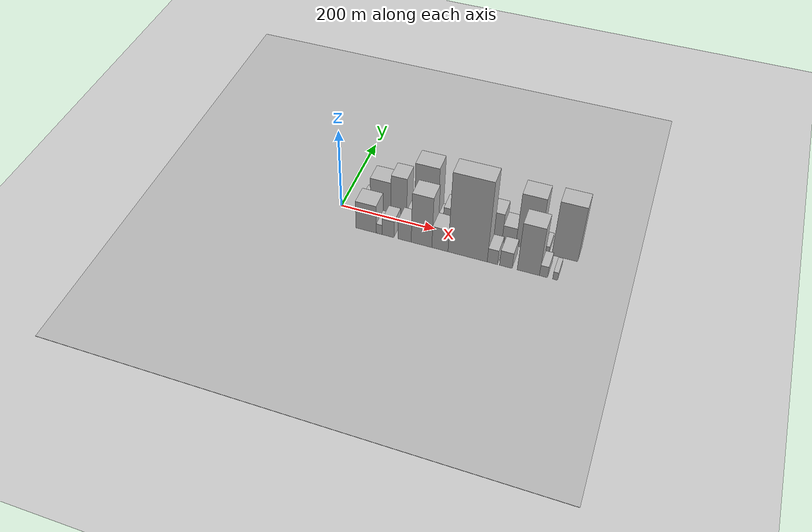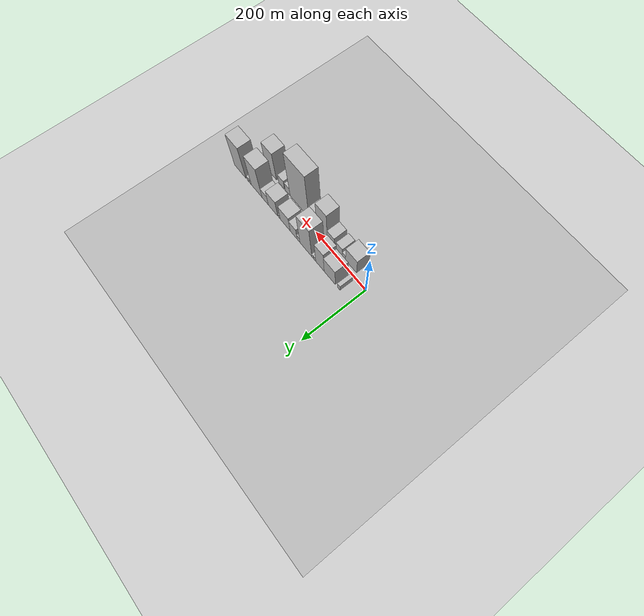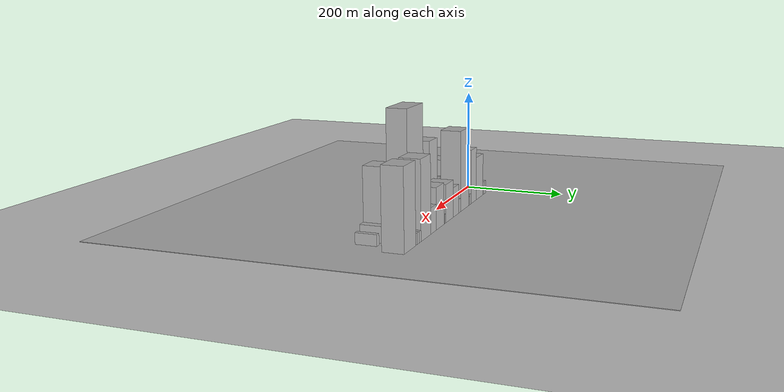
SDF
<?xml version="1.0" encoding="utf-8"?>

<sdf version="1.6">

   <world name="default">

      <gui fullscreen="0">

         <camera name="user_camera">

            <pose>-15 0 4.57585 0 0 0</pose>

            <view_controller>orbit</view_controller>

         </camera>

      </gui>

      <scene>

         <sky>

           <clouds>

             <speed>12</speed>

           </clouds>

         </sky>

         <ambient>0.4 0.4 0.4 1</ambient>

         <background>0.7 0.7 0.7 1</background>

         <shadows>1</shadows>

      </scene>

      <gravity>0 0 -9.8066</gravity>

      <magnetic_field>6e-06 2.3e-05 -4.2e-05</magnetic_field>

      <physics default="0" name="default_physics" type="ode">

         <ode>

            <solver>

               <type>quick</type>

               <iters>10</iters>

               <sor>1.0</sor>

               <use_dynamic_moi_rescaling>0</use_dynamic_moi_rescaling>

            </solver>

            <constraints>

               <cfm>0</cfm>

               <erp>0.2</erp>

               <contact_max_correcting_vel>100</contact_max_correcting_vel>

               <contact_surface_layer>0.001</contact_surface_layer>

            </constraints>

         </ode>

         <max_step_size>0.004</max_step_size>

         <real_time_factor>1</real_time_factor>

         <real_time_update_rate>250</real_time_update_rate>

      </physics>

      <light name="sun" type="directional">

         <cast_shadows>1</cast_shadows>

         <pose>0 0 10 0 0 0</pose>

         <diffuse>0.8 0.8 0.8 1</diffuse>

         <specular>0.2 0.2 0.2 1</specular>

         <attenuation>

            <range>1000</range>

            <constant>0.9</constant>

            <linear>0.01</linear>

            <quadratic>0.001</quadratic>

         </attenuation>

         <direction>-0.5 0.1 -0.9</direction>

      </light>

      <include>

         <name>ground_plane_1</name>

         <uri>model://HANNAS_ground_plane</uri>

         <pose>0 0 0  0 0 0</pose>

      </include>

      <include>

         <name>ground_plane_2</name>

         <uri>model://HANNAS_ground_plane</uri>

         <pose>100 0 0  0 0 0</pose>

      </include>

      <model name="building_1">

         <static>1</static>

         <pose frame="">45.5367 30.0000 0 0.000000 0.000000 1.570796</pose>

         <link name="link">

            <pose frame="">0 0 13.50 0 0 0</pose>

            <collision name="collision">

               <geometry>

                  <box>

                     <size>40.0000 11.0735 27.0000</size>

                  </box>

               </geometry>

               <max_contacts>10</max_contacts>

               <surface>

                  <contact>

                     <ode/>

                  </contact>

                  <bounce/>

                  <friction>

                     <torsional>

                        <ode/>

                     </torsional>

                     <ode/>

                  </friction>

               </surface>

            </collision>

            <visual name="visual">

               <cast_shadows>0</cast_shadows>

               <geometry>

                  <box>

                     <size>40.0000 11.0735 27.0000</size>

                  </box>

               </geometry>

               <material>

                  <script>

                     <uri>model://HANNAS_wall/materials/scripts</uri>

                     <uri>model://HANNAS_wall/materials/textures</uri>

                     <name>vrc/HANNAS_wall</name>

                  </script>

               </material>

            </visual>

            <self_collide>0</self_collide>

            <enable_wind>0</enable_wind>

            <kinematic>0</kinematic>

         </link>

      </model>

      <model name="building_2">

         <static>1</static>

         <pose frame="">81.1592 30.0000 0 0.000000 0.000000 1.570796</pose>

         <link name="link">

            <pose frame="">0 0 43.50 0 0 0</pose>

            <collision name="collision">

               <geometry>

                  <box>

                     <size>40.0000 44.1714 87.0000</size>

                  </box>

               </geometry>

               <max_contacts>10</max_contacts>

               <surface>

                  <contact>

                     <ode/>

                  </contact>

                  <bounce/>

                  <friction>

                     <torsional>

                        <ode/>

                     </torsional>

                     <ode/>

                  </friction>

               </surface>

            </collision>

            <visual name="visual">

               <cast_shadows>0</cast_shadows>

               <geometry>

                  <box>

                     <size>40.0000 44.1714 87.0000</size>

                  </box>

               </geometry>

               <material>

                  <script>

                     <uri>model://HANNAS_wall/materials/scripts</uri>

                     <uri>model://HANNAS_wall/materials/textures</uri>

                     <name>vrc/HANNAS_wall</name>

                  </script>

               </material>

            </visual>

            <self_collide>0</self_collide>

            <enable_wind>0</enable_wind>

            <kinematic>0</kinematic>

         </link>

      </model>

      <model name="building_3">

         <static>1</static>

         <pose frame="">120.0275 30.0000 0 0.000000 0.000000 1.570796</pose>

         <link name="link">

            <pose frame="">0 0 54.00 0 0 0</pose>

            <collision name="collision">

               <geometry>

                  <box>

                     <size>40.0000 33.5653 108.0000</size>

                  </box>

               </geometry>

               <max_contacts>10</max_contacts>

               <surface>

                  <contact>

                     <ode/>

                  </contact>

                  <bounce/>

                  <friction>

                     <torsional>

                        <ode/>

                     </torsional>

                     <ode/>

                  </friction>

               </surface>

            </collision>

            <visual name="visual">

               <cast_shadows>0</cast_shadows>

               <geometry>

                  <box>

                     <size>40.0000 33.5653 108.0000</size>

                  </box>

               </geometry>

               <material>

                  <script>

                     <uri>model://HANNAS_wall/materials/scripts</uri>

                     <uri>model://HANNAS_wall/materials/textures</uri>

                     <name>vrc/HANNAS_wall</name>

                  </script>

               </material>

            </visual>

            <self_collide>0</self_collide>

            <enable_wind>0</enable_wind>

            <kinematic>0</kinematic>

         </link>

      </model>

      <model name="building_4">

         <static>1</static>

         <pose frame="">141.1491 30.0000 0 0.000000 0.000000 1.570796</pose>

         <link name="link">

            <pose frame="">0 0 10.50 0 0 0</pose>

            <collision name="collision">

               <geometry>

                  <box>

                     <size>40.0000 8.6779 21.0000</size>

                  </box>

               </geometry>

               <max_contacts>10</max_contacts>

               <surface>

                  <contact>

                     <ode/>

                  </contact>

                  <bounce/>

                  <friction>

                     <torsional>

                        <ode/>

                     </torsional>

                     <ode/>

                  </friction>

               </surface>

            </collision>

            <visual name="visual">

               <cast_shadows>0</cast_shadows>

               <geometry>

                  <box>

                     <size>40.0000 8.6779 21.0000</size>

                  </box>

               </geometry>

               <material>

                  <script>

                     <uri>model://HANNAS_wall/materials/scripts</uri>

                     <uri>model://HANNAS_wall/materials/textures</uri>

                     <name>vrc/HANNAS_wall</name>

                  </script>

               </material>

            </visual>

            <self_collide>0</self_collide>

            <enable_wind>0</enable_wind>

            <kinematic>0</kinematic>

         </link>

      </model>

      <model name="building_5">

         <static>1</static>

         <pose frame="">149.2468 30.0000 0 0.000000 0.000000 1.570796</pose>

         <link name="link">

            <pose frame="">0 0 9.00 0 0 0</pose>

            <collision name="collision">

               <geometry>

                  <box>

                     <size>40.0000 7.5175 18.0000</size>

                  </box>

               </geometry>

               <max_contacts>10</max_contacts>

               <surface>

                  <contact>

                     <ode/>

                  </contact>

                  <bounce/>

                  <friction>

                     <torsional>

                        <ode/>

                     </torsional>

                     <ode/>

                  </friction>

               </surface>

            </collision>

            <visual name="visual">

               <cast_shadows>0</cast_shadows>

               <geometry>

                  <box>

                     <size>40.0000 7.5175 18.0000</size>

                  </box>

               </geometry>

               <material>

                  <script>

                     <uri>model://HANNAS_wall/materials/scripts</uri>

                     <uri>model://HANNAS_wall/materials/textures</uri>

                     <name>vrc/HANNAS_wall</name>

                  </script>

               </material>

            </visual>

            <self_collide>0</self_collide>

            <enable_wind>0</enable_wind>

            <kinematic>0</kinematic>

         </link>

      </model>

      <model name="building_6">

         <static>1</static>

         <pose frame="">177.5252 30.0000 0 0.000000 0.000000 1.570796</pose>

         <link name="link">

            <pose frame="">0 0 78.00 0 0 0</pose>

            <collision name="collision">

               <geometry>

                  <box>

                     <size>40.0000 49.0393 156.0000</size>

                  </box>

               </geometry>

               <max_contacts>10</max_contacts>

               <surface>

                  <contact>

                     <ode/>

                  </contact>

                  <bounce/>

                  <friction>

                     <torsional>

                        <ode/>

                     </torsional>

                     <ode/>

                  </friction>

               </surface>

            </collision>

            <visual name="visual">

               <cast_shadows>0</cast_shadows>

               <geometry>

                  <box>

                     <size>40.0000 49.0393 156.0000</size>

                  </box>

               </geometry>

               <material>

                  <script>

                     <uri>model://HANNAS_wall/materials/scripts</uri>

                     <uri>model://HANNAS_wall/materials/textures</uri>

                     <name>vrc/HANNAS_wall</name>

                  </script>

               </material>

            </visual>

            <self_collide>0</self_collide>

            <enable_wind>0</enable_wind>

            <kinematic>0</kinematic>

         </link>

      </model>

      <model name="building_7">

         <static>1</static>

         <pose frame="">207.9645 30.0000 0 0.000000 0.000000 1.570796</pose>

         <link name="link">

            <pose frame="">0 0 13.50 0 0 0</pose>

            <collision name="collision">

               <geometry>

                  <box>

                     <size>40.0000 11.8393 27.0000</size>

                  </box>

               </geometry>

               <max_contacts>10</max_contacts>

               <surface>

                  <contact>

                     <ode/>

                  </contact>

                  <bounce/>

                  <friction>

                     <torsional>

                        <ode/>

                     </torsional>

                     <ode/>

                  </friction>

               </surface>

            </collision>

            <visual name="visual">

               <cast_shadows>0</cast_shadows>

               <geometry>

                  <box>

                     <size>40.0000 11.8393 27.0000</size>

                  </box>

               </geometry>

               <material>

                  <script>

                     <uri>model://HANNAS_wall/materials/scripts</uri>

                     <uri>model://HANNAS_wall/materials/textures</uri>

                     <name>vrc/HANNAS_wall</name>

                  </script>

               </material>

            </visual>

            <self_collide>0</self_collide>

            <enable_wind>0</enable_wind>

            <kinematic>0</kinematic>

         </link>

      </model>

      <model name="building_8">

         <static>1</static>

         <pose frame="">228.5331 30.0000 0 0.000000 0.000000 1.570796</pose>

         <link name="link">

            <pose frame="">0 0 28.50 0 0 0</pose>

            <collision name="collision">

               <geometry>

                  <box>

                     <size>40.0000 29.2979 57.0000</size>

                  </box>

               </geometry>

               <max_contacts>10</max_contacts>

               <surface>

                  <contact>

                     <ode/>

                  </contact>

                  <bounce/>

                  <friction>

                     <torsional>

                        <ode/>

                     </torsional>

                     <ode/>

                  </friction>

               </surface>

            </collision>

            <visual name="visual">

               <cast_shadows>0</cast_shadows>

               <geometry>

                  <box>

                     <size>40.0000 29.2979 57.0000</size>

                  </box>

               </geometry>

               <material>

                  <script>

                     <uri>model://HANNAS_wall/materials/scripts</uri>

                     <uri>model://HANNAS_wall/materials/textures</uri>

                     <name>vrc/HANNAS_wall</name>

                  </script>

               </material>

            </visual>

            <self_collide>0</self_collide>

            <enable_wind>0</enable_wind>

            <kinematic>0</kinematic>

         </link>

      </model>

      <model name="building_9">

         <static>1</static>

         <pose frame="">264.3272 30.0000 0 0.000000 0.000000 1.570796</pose>

         <link name="link">

            <pose frame="">0 0 36.00 0 0 0</pose>

            <collision name="collision">

               <geometry>

                  <box>

                     <size>40.0000 42.2904 72.0000</size>

                  </box>

               </geometry>

               <max_contacts>10</max_contacts>

               <surface>

                  <contact>

                     <ode/>

                  </contact>

                  <bounce/>

                  <friction>

                     <torsional>

                        <ode/>

                     </torsional>

                     <ode/>

                  </friction>

               </surface>

            </collision>

            <visual name="visual">

               <cast_shadows>0</cast_shadows>

               <geometry>

                  <box>

                     <size>40.0000 42.2904 72.0000</size>

                  </box>

               </geometry>

               <material>

                  <script>

                     <uri>model://HANNAS_wall/materials/scripts</uri>

                     <uri>model://HANNAS_wall/materials/textures</uri>

                     <name>vrc/HANNAS_wall</name>

                  </script>

               </material>

            </visual>

            <self_collide>0</self_collide>

            <enable_wind>0</enable_wind>

            <kinematic>0</kinematic>

         </link>

      </model>

      <model name="building_10">

         <static>1</static>

         <pose frame="">289.1165 30.0000 0 0.000000 0.000000 1.570796</pose>

         <link name="link">

            <pose frame="">0 0 9.00 0 0 0</pose>

            <collision name="collision">

               <geometry>

                  <box>

                     <size>40.0000 7.2881 18.0000</size>

                  </box>

               </geometry>

               <max_contacts>10</max_contacts>

               <surface>

                  <contact>

                     <ode/>

                  </contact>

                  <bounce/>

                  <friction>

                     <torsional>

                        <ode/>

                     </torsional>

                     <ode/>

                  </friction>

               </surface>

            </collision>

            <visual name="visual">

               <cast_shadows>0</cast_shadows>

               <geometry>

                  <box>

                     <size>40.0000 7.2881 18.0000</size>

                  </box>

               </geometry>

               <material>

                  <script>

                     <uri>model://HANNAS_wall/materials/scripts</uri>

                     <uri>model://HANNAS_wall/materials/textures</uri>

                     <name>vrc/HANNAS_wall</name>

                  </script>

               </material>

            </visual>

            <self_collide>0</self_collide>

            <enable_wind>0</enable_wind>

            <kinematic>0</kinematic>

         </link>

      </model>

      <model name="building_11">

         <static>1</static>

         <pose frame="">316.0593 30.0000 0 0.000000 0.000000 1.570796</pose>

         <link name="link">

            <pose frame="">0 0 39.00 0 0 0</pose>

            <collision name="collision">

               <geometry>

                  <box>

                     <size>40.0000 40.5976 78.0000</size>

                  </box>

               </geometry>

               <max_contacts>10</max_contacts>

               <surface>

                  <contact>

                     <ode/>

                  </contact>

                  <bounce/>

                  <friction>

                     <torsional>

                        <ode/>

                     </torsional>

                     <ode/>

                  </friction>

               </surface>

            </collision>

            <visual name="visual">

               <cast_shadows>0</cast_shadows>

               <geometry>

                  <box>

                     <size>40.0000 40.5976 78.0000</size>

                  </box>

               </geometry>

               <material>

                  <script>

                     <uri>model://HANNAS_wall/materials/scripts</uri>

                     <uri>model://HANNAS_wall/materials/textures</uri>

                     <name>vrc/HANNAS_wall</name>

                  </script>

               </material>

            </visual>

            <self_collide>0</self_collide>

            <enable_wind>0</enable_wind>

            <kinematic>0</kinematic>

         </link>

      </model>

      <model name="building_12">

         <static>1</static>

         <pose frame="">350.3857 30.0000 0 0.000000 0.000000 1.570796</pose>

         <link name="link">

            <pose frame="">0 0 24.00 0 0 0</pose>

            <collision name="collision">

               <geometry>

                  <box>

                     <size>40.0000 28.0552 48.0000</size>

                  </box>

               </geometry>

               <max_contacts>10</max_contacts>

               <surface>

                  <contact>

                     <ode/>

                  </contact>

                  <bounce/>

                  <friction>

                     <torsional>

                        <ode/>

                     </torsional>

                     <ode/>

                  </friction>

               </surface>

            </collision>

            <visual name="visual">

               <cast_shadows>0</cast_shadows>

               <geometry>

                  <box>

                     <size>40.0000 28.0552 48.0000</size>

                  </box>

               </geometry>

               <material>

                  <script>

                     <uri>model://HANNAS_wall/materials/scripts</uri>

                     <uri>model://HANNAS_wall/materials/textures</uri>

                     <name>vrc/HANNAS_wall</name>

                  </script>

               </material>

            </visual>

            <self_collide>0</self_collide>

            <enable_wind>0</enable_wind>

            <kinematic>0</kinematic>

         </link>

      </model>

      <model name="building_13">

         <static>1</static>

         <pose frame="">388.3009 30.0000 0 0.000000 0.000000 1.570796</pose>

         <link name="link">

            <pose frame="">0 0 72.00 0 0 0</pose>

            <collision name="collision">

               <geometry>

                  <box>

                     <size>40.0000 47.7751 144.0000</size>

                  </box>

               </geometry>

               <max_contacts>10</max_contacts>

               <surface>

                  <contact>

                     <ode/>

                  </contact>

                  <bounce/>

                  <friction>

                     <torsional>

                        <ode/>

                     </torsional>

                     <ode/>

                  </friction>

               </surface>

            </collision>

            <visual name="visual">

               <cast_shadows>0</cast_shadows>

               <geometry>

                  <box>

                     <size>40.0000 47.7751 144.0000</size>

                  </box>

               </geometry>

               <material>

                  <script>

                     <uri>model://HANNAS_wall/materials/scripts</uri>

                     <uri>model://HANNAS_wall/materials/textures</uri>

                     <name>vrc/HANNAS_wall</name>

                  </script>

               </material>

            </visual>

            <self_collide>0</self_collide>

            <enable_wind>0</enable_wind>

            <kinematic>0</kinematic>

         </link>

      </model>

      <model name="building_14">

         <static>1</static>

         <pose frame="">416.6782 30.0000 0 0.000000 0.000000 1.570796</pose>

         <link name="link">

            <pose frame="">0 0 10.50 0 0 0</pose>

            <collision name="collision">

               <geometry>

                  <box>

                     <size>40.0000 8.9795 21.0000</size>

                  </box>

               </geometry>

               <max_contacts>10</max_contacts>

               <surface>

                  <contact>

                     <ode/>

                  </contact>

                  <bounce/>

                  <friction>

                     <torsional>

                        <ode/>

                     </torsional>

                     <ode/>

                  </friction>

               </surface>

            </collision>

            <visual name="visual">

               <cast_shadows>0</cast_shadows>

               <geometry>

                  <box>

                     <size>40.0000 8.9795 21.0000</size>

                  </box>

               </geometry>

               <material>

                  <script>

                     <uri>model://HANNAS_wall/materials/scripts</uri>

                     <uri>model://HANNAS_wall/materials/textures</uri>

                     <name>vrc/HANNAS_wall</name>

                  </script>

               </material>

            </visual>

            <self_collide>0</self_collide>

            <enable_wind>0</enable_wind>

            <kinematic>0</kinematic>

         </link>

      </model>

      <model name="building_15">

         <static>1</static>

         <pose frame="">426.0127 30.0000 0 0.000000 0.000000 1.570796</pose>

         <link name="link">

            <pose frame="">0 0 10.50 0 0 0</pose>

            <collision name="collision">

               <geometry>

                  <box>

                     <size>40.0000 9.6896 21.0000</size>

                  </box>

               </geometry>

               <max_contacts>10</max_contacts>

               <surface>

                  <contact>

                     <ode/>

                  </contact>

                  <bounce/>

                  <friction>

                     <torsional>

                        <ode/>

                     </torsional>

                     <ode/>

                  </friction>

               </surface>

            </collision>

            <visual name="visual">

               <cast_shadows>0</cast_shadows>

               <geometry>

                  <box>

                     <size>40.0000 9.6896 21.0000</size>

                  </box>

               </geometry>

               <material>

                  <script>

                     <uri>model://HANNAS_wall/materials/scripts</uri>

                     <uri>model://HANNAS_wall/materials/textures</uri>

                     <name>vrc/HANNAS_wall</name>

                  </script>

               </material>

            </visual>

            <self_collide>0</self_collide>

            <enable_wind>0</enable_wind>

            <kinematic>0</kinematic>

         </link>

      </model>

      <model name="building_16">

         <static>1</static>

         <pose frame="">462.6451 30.0000 0 0.000000 0.000000 1.570796</pose>

         <link name="link">

            <pose frame="">0 0 73.50 0 0 0</pose>

            <collision name="collision">

               <geometry>

                  <box>

                     <size>40.0000 51.5750 147.0000</size>

                  </box>

               </geometry>

               <max_contacts>10</max_contacts>

               <surface>

                  <contact>

                     <ode/>

                  </contact>

                  <bounce/>

                  <friction>

                     <torsional>

                        <ode/>

                     </torsional>

                     <ode/>

                  </friction>

               </surface>

            </collision>

            <visual name="visual">

               <cast_shadows>0</cast_shadows>

               <geometry>

                  <box>

                     <size>40.0000 51.5750 147.0000</size>

                  </box>

               </geometry>

               <material>

                  <script>

                     <uri>model://HANNAS_wall/materials/scripts</uri>

                     <uri>model://HANNAS_wall/materials/textures</uri>

                     <name>vrc/HANNAS_wall</name>

                  </script>

               </material>

            </visual>

            <self_collide>0</self_collide>

            <enable_wind>0</enable_wind>

            <kinematic>0</kinematic>

         </link>

      </model>

      <model name="building_17">

         <static>1</static>

         <pose frame="">71.7341 -30.0000 0 0.000000 0.000000 1.570796</pose>

         <link name="link">

            <pose frame="">0 0 37.50 0 0 0</pose>

            <collision name="collision">

               <geometry>

                  <box>

                     <size>40.0000 43.4682 75.0000</size>

                  </box>

               </geometry>

               <max_contacts>10</max_contacts>

               <surface>

                  <contact>

                     <ode/>

                  </contact>

                  <bounce/>

                  <friction>

                     <torsional>

                        <ode/>

                     </torsional>

                     <ode/>

                  </friction>

               </surface>

            </collision>

            <visual name="visual">

               <cast_shadows>0</cast_shadows>

               <geometry>

                  <box>

                     <size>40.0000 43.4682 75.0000</size>

                  </box>

               </geometry>

               <material>

                  <script>

                     <uri>model://HANNAS_wall/materials/scripts</uri>

                     <uri>model://HANNAS_wall/materials/textures</uri>

                     <name>vrc/HANNAS_wall</name>

                  </script>

               </material>

            </visual>

            <self_collide>0</self_collide>

            <enable_wind>0</enable_wind>

            <kinematic>0</kinematic>

         </link>

      </model>

      <model name="building_18">

         <static>1</static>

         <pose frame="">99.8404 -30.0000 0 0.000000 0.000000 1.570796</pose>

         <link name="link">

            <pose frame="">0 0 13.50 0 0 0</pose>

            <collision name="collision">

               <geometry>

                  <box>

                     <size>40.0000 12.7443 27.0000</size>

                  </box>

               </geometry>

               <max_contacts>10</max_contacts>

               <surface>

                  <contact>

                     <ode/>

                  </contact>

                  <bounce/>

                  <friction>

                     <torsional>

                        <ode/>

                     </torsional>

                     <ode/>

                  </friction>

               </surface>

            </collision>

            <visual name="visual">

               <cast_shadows>0</cast_shadows>

               <geometry>

                  <box>

                     <size>40.0000 12.7443 27.0000</size>

                  </box>

               </geometry>

               <material>

                  <script>

                     <uri>model://HANNAS_wall/materials/scripts</uri>

                     <uri>model://HANNAS_wall/materials/textures</uri>

                     <name>vrc/HANNAS_wall</name>

                  </script>

               </material>

            </visual>

            <self_collide>0</self_collide>

            <enable_wind>0</enable_wind>

            <kinematic>0</kinematic>

         </link>

      </model>

      <model name="building_19">

         <static>1</static>

         <pose frame="">118.4629 -30.0000 0 0.000000 0.000000 1.570796</pose>

         <link name="link">

            <pose frame="">0 0 22.50 0 0 0</pose>

            <collision name="collision">

               <geometry>

                  <box>

                     <size>40.0000 24.5007 45.0000</size>

                  </box>

               </geometry>

               <max_contacts>10</max_contacts>

               <surface>

                  <contact>

                     <ode/>

                  </contact>

                  <bounce/>

                  <friction>

                     <torsional>

                        <ode/>

                     </torsional>

                     <ode/>

                  </friction>

               </surface>

            </collision>

            <visual name="visual">

               <cast_shadows>0</cast_shadows>

               <geometry>

                  <box>

                     <size>40.0000 24.5007 45.0000</size>

                  </box>

               </geometry>

               <material>

                  <script>

                     <uri>model://HANNAS_wall/materials/scripts</uri>

                     <uri>model://HANNAS_wall/materials/textures</uri>

                     <name>vrc/HANNAS_wall</name>

                  </script>

               </material>

            </visual>

            <self_collide>0</self_collide>

            <enable_wind>0</enable_wind>

            <kinematic>0</kinematic>

         </link>

      </model>

      <model name="building_20">

         <static>1</static>

         <pose frame="">152.8165 -30.0000 0 0.000000 0.000000 1.570796</pose>

         <link name="link">

            <pose frame="">0 0 25.50 0 0 0</pose>

            <collision name="collision">

               <geometry>

                  <box>

                     <size>40.0000 28.2065 51.0000</size>

                  </box>

               </geometry>

               <max_contacts>10</max_contacts>

               <surface>

                  <contact>

                     <ode/>

                  </contact>

                  <bounce/>

                  <friction>

                     <torsional>

                        <ode/>

                     </torsional>

                     <ode/>

                  </friction>

               </surface>

            </collision>

            <visual name="visual">

               <cast_shadows>0</cast_shadows>

               <geometry>

                  <box>

                     <size>40.0000 28.2065 51.0000</size>

                  </box>

               </geometry>

               <material>

                  <script>

                     <uri>model://HANNAS_wall/materials/scripts</uri>

                     <uri>model://HANNAS_wall/materials/textures</uri>

                     <name>vrc/HANNAS_wall</name>

                  </script>

               </material>

            </visual>

            <self_collide>0</self_collide>

            <enable_wind>0</enable_wind>

            <kinematic>0</kinematic>

         </link>

      </model>

      <model name="building_21">

         <static>1</static>

         <pose frame="">188.3258 -30.0000 0 0.000000 0.000000 1.570796</pose>

         <link name="link">

            <pose frame="">0 0 67.50 0 0 0</pose>

            <collision name="collision">

               <geometry>

                  <box>

                     <size>40.0000 42.8120 135.0000</size>

                  </box>

               </geometry>

               <max_contacts>10</max_contacts>

               <surface>

                  <contact>

                     <ode/>

                  </contact>

                  <bounce/>

                  <friction>

                     <torsional>

                        <ode/>

                     </torsional>

                     <ode/>

                  </friction>

               </surface>

            </collision>

            <visual name="visual">

               <cast_shadows>0</cast_shadows>

               <geometry>

                  <box>

                     <size>40.0000 42.8120 135.0000</size>

                  </box>

               </geometry>

               <material>

                  <script>

                     <uri>model://HANNAS_wall/materials/scripts</uri>

                     <uri>model://HANNAS_wall/materials/textures</uri>

                     <name>vrc/HANNAS_wall</name>

                  </script>

               </material>

            </visual>

            <self_collide>0</self_collide>

            <enable_wind>0</enable_wind>

            <kinematic>0</kinematic>

         </link>

      </model>

      <model name="building_22">

         <static>1</static>

         <pose frame="">226.4628 -30.0000 0 0.000000 0.000000 1.570796</pose>

         <link name="link">

            <pose frame="">0 0 30.00 0 0 0</pose>

            <collision name="collision">

               <geometry>

                  <box>

                     <size>40.0000 33.4621 60.0000</size>

                  </box>

               </geometry>

               <max_contacts>10</max_contacts>

               <surface>

                  <contact>

                     <ode/>

                  </contact>

                  <bounce/>

                  <friction>

                     <torsional>

                        <ode/>

                     </torsional>

                     <ode/>

                  </friction>

               </surface>

            </collision>

            <visual name="visual">

               <cast_shadows>0</cast_shadows>

               <geometry>

                  <box>

                     <size>40.0000 33.4621 60.0000</size>

                  </box>

               </geometry>

               <material>

                  <script>

                     <uri>model://HANNAS_wall/materials/scripts</uri>

                     <uri>model://HANNAS_wall/materials/textures</uri>

                     <name>vrc/HANNAS_wall</name>

                  </script>

               </material>

            </visual>

            <self_collide>0</self_collide>

            <enable_wind>0</enable_wind>

            <kinematic>0</kinematic>

         </link>

      </model>

      <model name="building_23">

         <static>1</static>

         <pose frame="">283.0121 -30.0000 0 0.000000 0.000000 1.570796</pose>

         <link name="link">

            <pose frame="">0 0 106.50 0 0 0</pose>

            <collision name="collision">

               <geometry>

                  <box>

                     <size>40.0000 79.6364 213.0000</size>

                  </box>

               </geometry>

               <max_contacts>10</max_contacts>

               <surface>

                  <contact>

                     <ode/>

                  </contact>

                  <bounce/>

                  <friction>

                     <torsional>

                        <ode/>

                     </torsional>

                     <ode/>

                  </friction>

               </surface>

            </collision>

            <visual name="visual">

               <cast_shadows>0</cast_shadows>

               <geometry>

                  <box>

                     <size>40.0000 79.6364 213.0000</size>

                  </box>

               </geometry>

               <material>

                  <script>

                     <uri>model://HANNAS_wall/materials/scripts</uri>

                     <uri>model://HANNAS_wall/materials/textures</uri>

                     <name>vrc/HANNAS_wall</name>

                  </script>

               </material>

            </visual>

            <self_collide>0</self_collide>

            <enable_wind>0</enable_wind>

            <kinematic>0</kinematic>

         </link>

      </model>

      <model name="building_24">

         <static>1</static>

         <pose frame="">333.2425 -30.0000 0 0.000000 0.000000 1.570796</pose>

         <link name="link">

            <pose frame="">0 0 19.50 0 0 0</pose>

            <collision name="collision">

               <geometry>

                  <box>

                     <size>40.0000 20.8243 39.0000</size>

                  </box>

               </geometry>

               <max_contacts>10</max_contacts>

               <surface>

                  <contact>

                     <ode/>

                  </contact>

                  <bounce/>

                  <friction>

                     <torsional>

                        <ode/>

                     </torsional>

                     <ode/>

                  </friction>

               </surface>

            </collision>

            <visual name="visual">

               <cast_shadows>0</cast_shadows>

               <geometry>

                  <box>

                     <size>40.0000 20.8243 39.0000</size>

                  </box>

               </geometry>

               <material>

                  <script>

                     <uri>model://HANNAS_wall/materials/scripts</uri>

                     <uri>model://HANNAS_wall/materials/textures</uri>

                     <name>vrc/HANNAS_wall</name>

                  </script>

               </material>

            </visual>

            <self_collide>0</self_collide>

            <enable_wind>0</enable_wind>

            <kinematic>0</kinematic>

         </link>

      </model>

      <model name="building_25">

         <static>1</static>

         <pose frame="">360.2270 -30.0000 0 0.000000 0.000000 1.570796</pose>

         <link name="link">

            <pose frame="">0 0 21.00 0 0 0</pose>

            <collision name="collision">

               <geometry>

                  <box>

                     <size>40.0000 25.1448 42.0000</size>

                  </box>

               </geometry>

               <max_contacts>10</max_contacts>

               <surface>

                  <contact>

                     <ode/>

                  </contact>

                  <bounce/>

                  <friction>

                     <torsional>

                        <ode/>

                     </torsional>

                     <ode/>

                  </friction>

               </surface>

            </collision>

            <visual name="visual">

               <cast_shadows>0</cast_shadows>

               <geometry>

                  <box>

                     <size>40.0000 25.1448 42.0000</size>

                  </box>

               </geometry>

               <material>

                  <script>

                     <uri>model://HANNAS_wall/materials/scripts</uri>

                     <uri>model://HANNAS_wall/materials/textures</uri>

                     <name>vrc/HANNAS_wall</name>

                  </script>

               </material>

            </visual>

            <self_collide>0</self_collide>

            <enable_wind>0</enable_wind>

            <kinematic>0</kinematic>

         </link>

      </model>

      <model name="building_26">

         <static>1</static>

         <pose frame="">404.7092 -30.0000 0 0.000000 0.000000 1.570796</pose>

         <link name="link">

            <pose frame="">0 0 64.50 0 0 0</pose>

            <collision name="collision">

               <geometry>

                  <box>

                     <size>40.0000 43.8195 129.0000</size>

                  </box>

               </geometry>

               <max_contacts>10</max_contacts>

               <surface>

                  <contact>

                     <ode/>

                  </contact>

                  <bounce/>

                  <friction>

                     <torsional>

                        <ode/>

                     </torsional>

                     <ode/>

                  </friction>

               </surface>

            </collision>

            <visual name="visual">

               <cast_shadows>0</cast_shadows>

               <geometry>

                  <box>

                     <size>40.0000 43.8195 129.0000</size>

                  </box>

               </geometry>

               <material>

                  <script>

                     <uri>model://HANNAS_wall/materials/scripts</uri>

                     <uri>model://HANNAS_wall/materials/textures</uri>

                     <name>vrc/HANNAS_wall</name>

                  </script>

               </material>

            </visual>

            <self_collide>0</self_collide>

            <enable_wind>0</enable_wind>

            <kinematic>0</kinematic>

         </link>

      </model>

      <model name="building_27">

         <static>1</static>

         <pose frame="">434.5311 -30.0000 0 0.000000 0.000000 1.570796</pose>

         <link name="link">

            <pose frame="">0 0 15.00 0 0 0</pose>

            <collision name="collision">

               <geometry>

                  <box>

                     <size>40.0000 15.8243 30.0000</size>

                  </box>

               </geometry>

               <max_contacts>10</max_contacts>

               <surface>

                  <contact>

                     <ode/>

                  </contact>

                  <bounce/>

                  <friction>

                     <torsional>

                        <ode/>

                     </torsional>

                     <ode/>

                  </friction>

               </surface>

            </collision>

            <visual name="visual">

               <cast_shadows>0</cast_shadows>

               <geometry>

                  <box>

                     <size>40.0000 15.8243 30.0000</size>

                  </box>

               </geometry>

               <material>

                  <script>

                     <uri>model://HANNAS_wall/materials/scripts</uri>

                     <uri>model://HANNAS_wall/materials/textures</uri>

                     <name>vrc/HANNAS_wall</name>

                  </script>

               </material>

            </visual>

            <self_collide>0</self_collide>

            <enable_wind>0</enable_wind>

            <kinematic>0</kinematic>

         </link>

      </model>

      <model name="building_28">

         <static>1</static>

         <pose frame="">457.2310 -30.0000 0 0.000000 0.000000 1.570796</pose>

         <link name="link">

            <pose frame="">0 0 10.50 0 0 0</pose>

            <collision name="collision">

               <geometry>

                  <box>

                     <size>40.0000 9.5756 21.0000</size>

                  </box>

               </geometry>

               <max_contacts>10</max_contacts>

               <surface>

                  <contact>

                     <ode/>

                  </contact>

                  <bounce/>

                  <friction>

                     <torsional>

                        <ode/>

                     </torsional>

                     <ode/>

                  </friction>

               </surface>

            </collision>

            <visual name="visual">

               <cast_shadows>0</cast_shadows>

               <geometry>

                  <box>

                     <size>40.0000 9.5756 21.0000</size>

                  </box>

               </geometry>

               <material>

                  <script>

                     <uri>model://HANNAS_wall/materials/scripts</uri>

                     <uri>model://HANNAS_wall/materials/textures</uri>

                     <name>vrc/HANNAS_wall</name>

                  </script>

               </material>

            </visual>

            <self_collide>0</self_collide>

            <enable_wind>0</enable_wind>

            <kinematic>0</kinematic>

         </link>

      </model>

   </world>

</sdf>

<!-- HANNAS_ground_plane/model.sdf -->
<sdf version="1.4">
<model name="HANNAS_ground_plane">
  <static>true</static>
    <link name="link">
      <collision name="collision">
        <geometry>
          <plane>
            <normal>0 0 1</normal>
            <size>1000 1000</size>
          </plane>
        </geometry>
        <surface>
          <friction>
            <ode>
              <mu>100</mu>
              <mu2>50</mu2>
            </ode>
          </friction>
        </surface>
      </collision>
      <visual name="visual">
        <cast_shadows>false</cast_shadows>
        <geometry>
          <plane>
            <normal>0 0 1</normal>
            <size>1000 1000</size>
          </plane>
        </geometry>
        <material>
          <script>
            <uri>model://HANNAS_ground_plane/materials/scripts/HANNAS_ground_plane.material</uri>
	    <uri>model://HANNAS_ground_plane/materials/textures</uri>
            <name>HANNASGroundPlane/Image</name>
          </script>
        </material>
      </visual>
    </link>
  </model>
</sdf>
